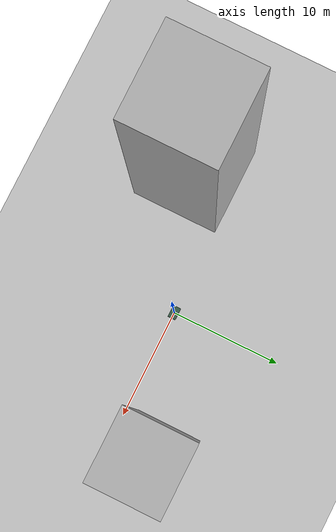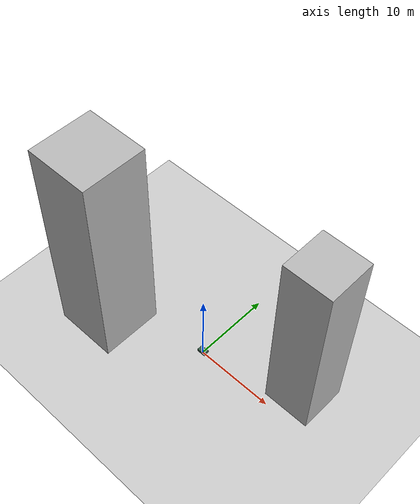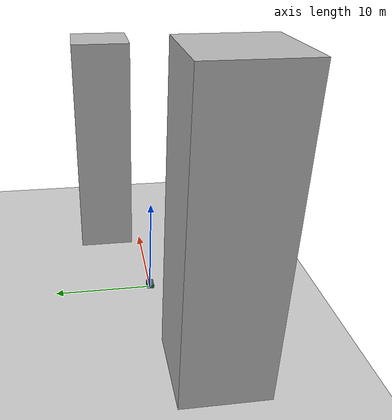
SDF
<?xml version="1.0" ?>
<sdf version="1.9">
  <world name="urban_canyon">
    <gravity>0 0 -9.8</gravity>
    <include>
      <uri>https://fuel.gazebosim.org/1.0/OpenRobotics/models/Ground Plane</uri>
    </include>
    <include>
      <uri>https://fuel.gazebosim.org/1.0/OpenRobotics/models/Sun</uri>
    </include>
    <model name="fireant_spawn_anchor">
      <include>
        <uri>model://fireant-ugv</uri>
      </include>
      <pose>0 0 0 0 0 0</pose>
    </model>
    <model name="tower_east">
      <pose>12 4 12 0 0 0</pose>
      <link name="core">
        <collision name="collision">
          <geometry>
            <box>
              <size>6 6 24</size>
            </box>
          </geometry>
        </collision>
        <visual name="visual">
          <geometry>
            <box>
              <size>6 6 24</size>
            </box>
          </geometry>
        </visual>
      </link>
    </model>
    <model name="tower_west">
      <pose>-12 -4 14 0 0 0</pose>
      <link name="core">
        <collision name="collision">
          <geometry>
            <box>
              <size>8 8 28</size>
            </box>
          </geometry>
        </collision>
        <visual name="visual">
          <geometry>
            <box>
              <size>8 8 28</size>
            </box>
          </geometry>
        </visual>
      </link>
    </model>
    <plugin name="gps_denial_profile" filename="libignition-gazebo-system.so">
      <multipath_error_m>14.0</multipath_error_m>
      <urban_masking>true</urban_masking>
    </plugin>
  </world>
</sdf>

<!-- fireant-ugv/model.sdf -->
<sdf version="1.9">
  <model name="fireant_ugv">
    <pose>0 0 0.22 0 0 0</pose>
    <static>false</static>
    <self_collide>false</self_collide>

    <link name="chassis">
      <pose>0 0 0 0 0 0</pose>
      <inertial>
        <mass>42.0</mass>
        <inertia>
          <ixx>3.4</ixx>
          <iyy>5.2</iyy>
          <izz>6.8</izz>
          <ixy>0.0</ixy>
          <ixz>0.0</ixz>
          <iyz>0.0</iyz>
        </inertia>
      </inertial>
      <collision name="chassis_collision">
        <geometry>
          <box>
            <size>1.1 0.72 0.34</size>
          </box>
        </geometry>
      </collision>
      <visual name="chassis_visual">
        <geometry>
          <mesh>
            <uri>model://fireant-ugv/meshes/fireant_chassis.obj</uri>
          </mesh>
        </geometry>
        <material>
          <ambient>0.12 0.24 0.18 1</ambient>
          <diffuse>0.22 0.36 0.28 1</diffuse>
        </material>
      </visual>
      <sensor name="front_lidar" type="gpu_lidar">
        <pose>0.45 0 0.18 0 0 0</pose>
        <topic>/fireant/lidar</topic>
        <ray>
          <scan>
            <horizontal>
              <samples>720</samples>
              <min_angle>-1.57</min_angle>
              <max_angle>1.57</max_angle>
            </horizontal>
          </scan>
          <range>
            <min>0.2</min>
            <max>60</max>
            <resolution>0.01</resolution>
          </range>
        </ray>
      </sensor>
      <sensor name="imu" type="imu">
        <topic>/fireant/imu</topic>
      </sensor>
      <sensor name="front_camera" type="camera">
        <pose>0.36 0 0.22 0 0 0</pose>
        <camera>
          <horizontal_fov>1.12</horizontal_fov>
          <image>
            <width>1280</width>
            <height>720</height>
            <format>R8G8B8</format>
          </image>
        </camera>
      </sensor>
    </link>
  </model>
</sdf>
